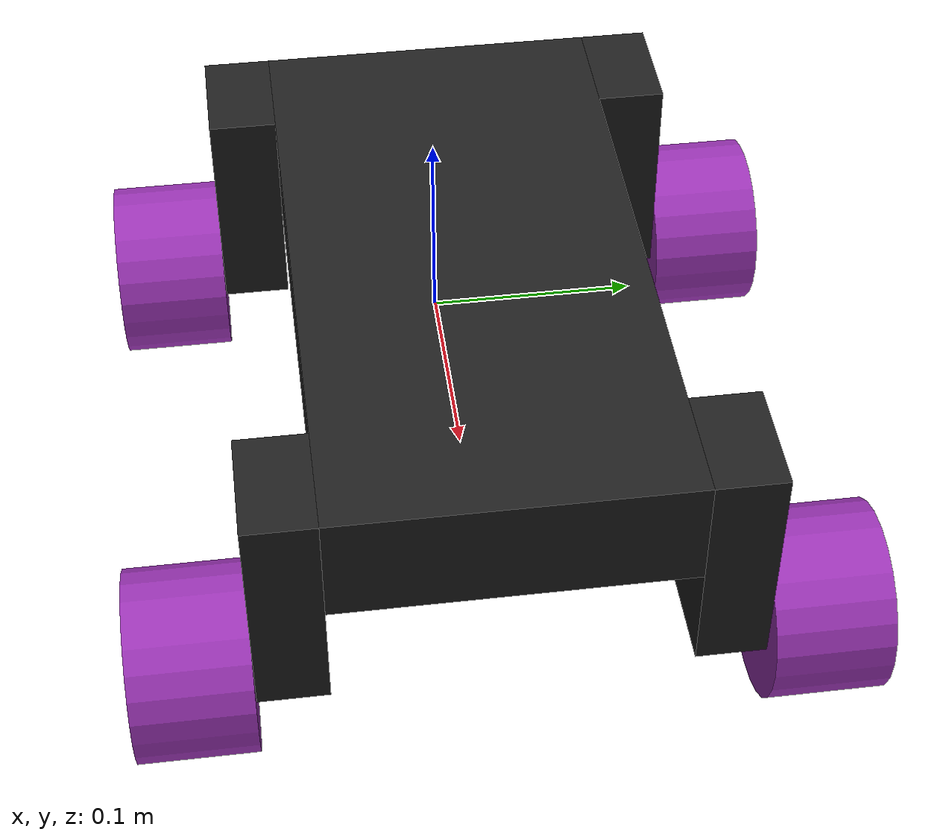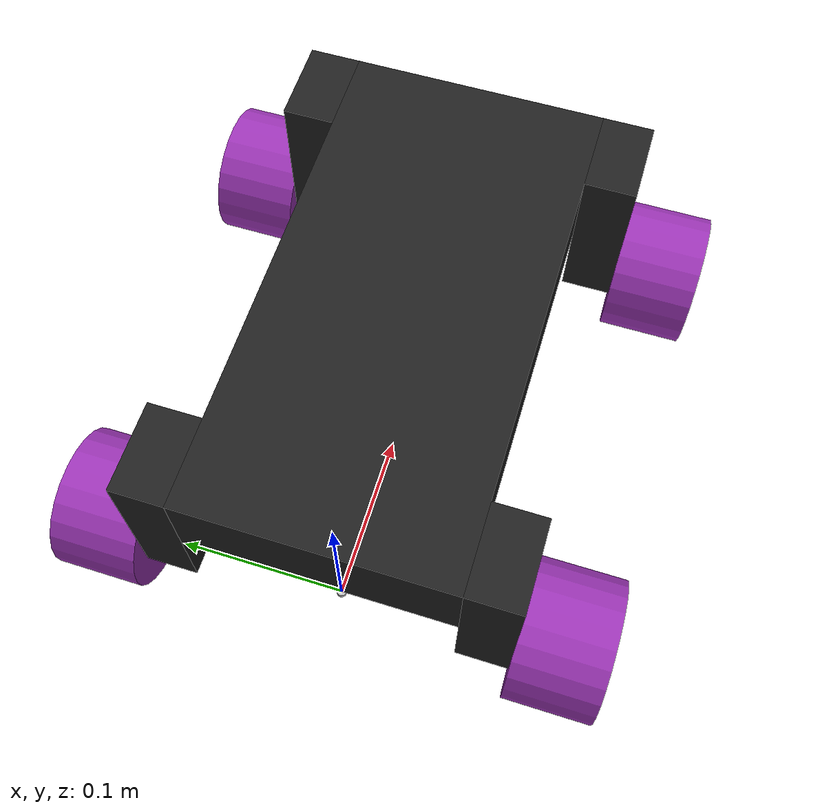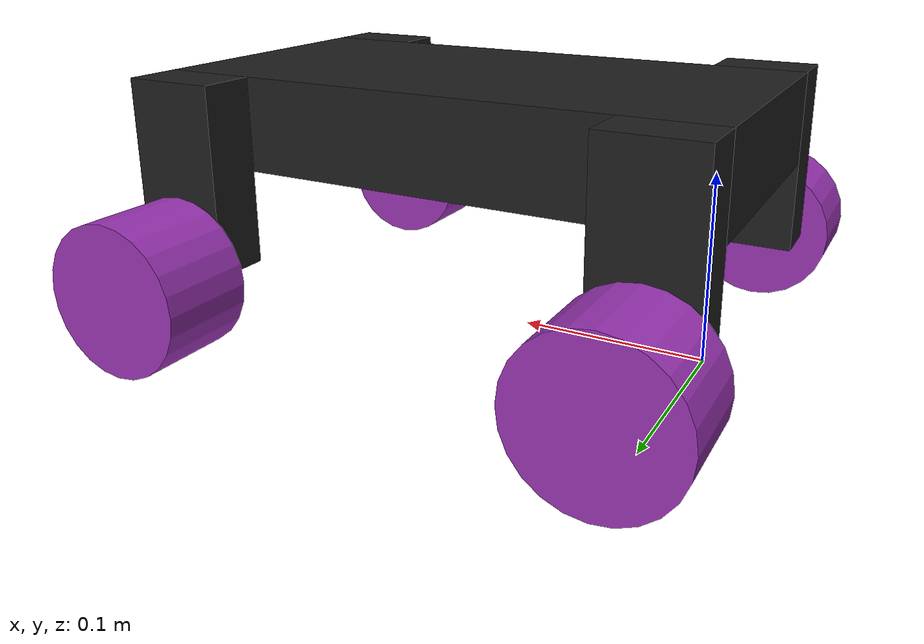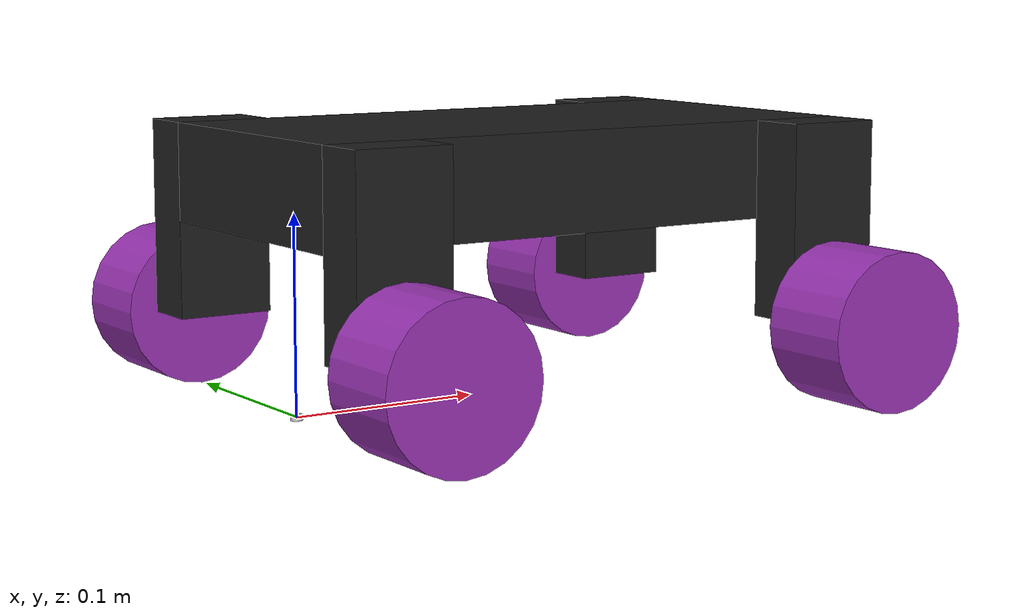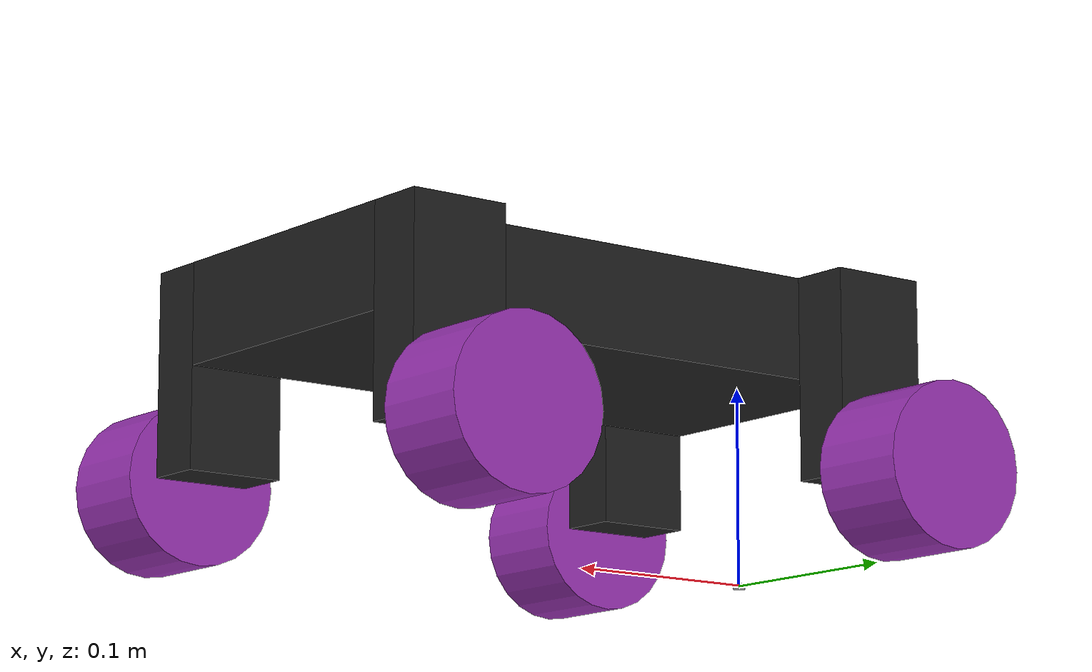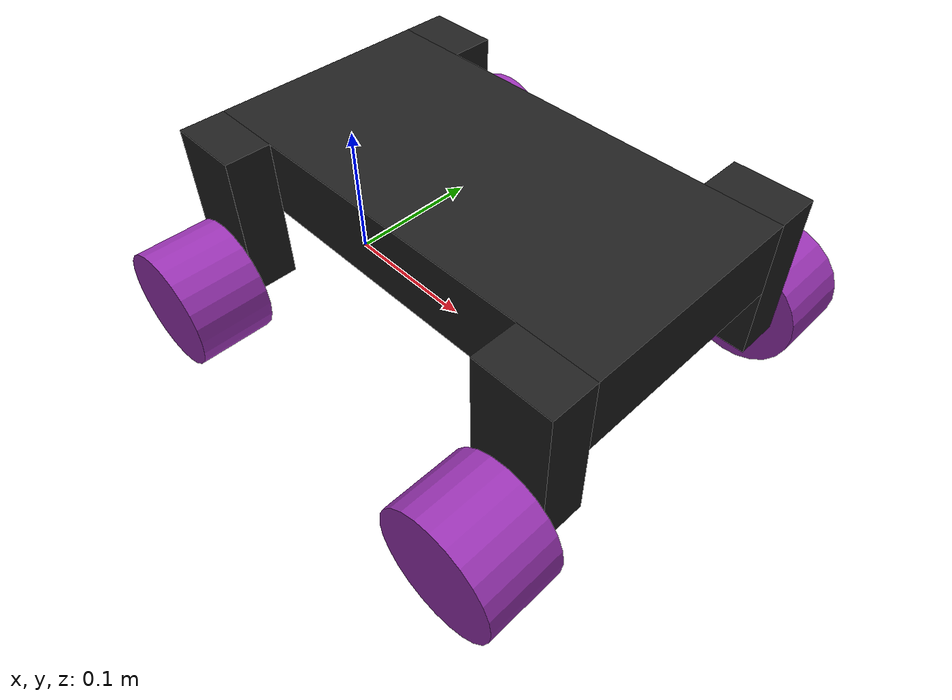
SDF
<sdf version='1.7'>
  <model name='microver'>
    <link name='base_link'>
      <inertial>
        <pose>0.125 0 0.112059 0 -0 0</pose>
        <mass>3.4</mass>
        <inertia>
          <ixx>0.0100739</ixx>
          <ixy>0</ixy>
          <ixz>0</ixz>
          <iyy>0.0300123</iyy>
          <iyz>0</iyz>
          <izz>0.0377283</izz>
        </inertia>
      </inertial>
      <collision name='base_link_fixed_joint_lump__back_left_leg_link_collision'>
        <pose>0 0.09 0.09 0 -0 0</pose>
        <geometry>
          <box>
            <size>0.05 0.03 0.1</size>
          </box>
        </geometry>
        <surface>
          <contact>
            <ode/>
          </contact>
          <friction>
            <ode/>
          </friction>
        </surface>
      </collision>
      <collision name='base_link_fixed_joint_lump__back_right_leg_link_collision_1'>
        <pose>0 -0.09 0.09 0 -0 0</pose>
        <geometry>
          <box>
            <size>0.05 0.03 0.1</size>
          </box>
        </geometry>
        <surface>
          <contact>
            <ode/>
          </contact>
          <friction>
            <ode/>
          </friction>
        </surface>
      </collision>
      <collision name='base_link_fixed_joint_lump__chassis_collision_2'>
        <pose>0.125 0 0.115 0 -0 0</pose>
        <geometry>
          <box>
            <size>0.3 0.15 0.05</size>
          </box>
        </geometry>
        <surface>
          <contact>
            <ode/>
          </contact>
          <friction>
            <ode/>
          </friction>
        </surface>
      </collision>
      <collision name='base_link_fixed_joint_lump__front_left_leg_link_collision_3'>
        <pose>0.25 0.09 0.09 0 -0 0</pose>
        <geometry>
          <box>
            <size>0.05 0.03 0.1</size>
          </box>
        </geometry>
        <surface>
          <contact>
            <ode/>
          </contact>
          <friction>
            <ode/>
          </friction>
        </surface>
      </collision>
      <collision name='base_link_fixed_joint_lump__front_right_leg_link_collision_4'>
        <pose>0.25 -0.09 0.09 0 -0 0</pose>
        <geometry>
          <box>
            <size>0.05 0.03 0.1</size>
          </box>
        </geometry>
        <surface>
          <contact>
            <ode/>
          </contact>
          <friction>
            <ode/>
          </friction>
        </surface>
      </collision>
      <visual name='base_link_visual'>
        <pose>0 0 0 0 -0 0</pose>
        <geometry>
          <cylinder>
            <length>0.003</length>
            <radius>0.003</radius>
          </cylinder>
        </geometry>
      </visual>
      <visual name='base_link_fixed_joint_lump__back_left_leg_link_visual_1'>
        <pose>0 0.09 0.09 0 -0 0</pose>
        <geometry>
          <box>
            <size>0.05 0.03 0.1</size>
          </box>
        </geometry>
        <material>
          <script>
            <name>Gazebo/Black</name>
            <uri>file://media/materials/scripts/gazebo.material</uri>
          </script>
        </material>
      </visual>
      <visual name='base_link_fixed_joint_lump__back_right_leg_link_visual_2'>
        <pose>0 -0.09 0.09 0 -0 0</pose>
        <geometry>
          <box>
            <size>0.05 0.03 0.1</size>
          </box>
        </geometry>
        <material>
          <script>
            <name>Gazebo/Black</name>
            <uri>file://media/materials/scripts/gazebo.material</uri>
          </script>
        </material>
      </visual>
      <visual name='base_link_fixed_joint_lump__chassis_visual_3'>
        <pose>0.125 0 0.115 0 -0 0</pose>
        <geometry>
          <box>
            <size>0.3 0.15 0.05</size>
          </box>
        </geometry>
        <material>
          <script>
            <name>Gazebo/Black</name>
            <uri>file://media/materials/scripts/gazebo.material</uri>
          </script>
        </material>
      </visual>
      <visual name='base_link_fixed_joint_lump__front_left_leg_link_visual_4'>
        <pose>0.25 0.09 0.09 0 -0 0</pose>
        <geometry>
          <box>
            <size>0.05 0.03 0.1</size>
          </box>
        </geometry>
        <material>
          <script>
            <name>Gazebo/Black</name>
            <uri>file://media/materials/scripts/gazebo.material</uri>
          </script>
        </material>
      </visual>
      <visual name='base_link_fixed_joint_lump__front_right_leg_link_visual_5'>
        <pose>0.25 -0.09 0.09 0 -0 0</pose>
        <geometry>
          <box>
            <size>0.05 0.03 0.1</size>
          </box>
        </geometry>
        <material>
          <script>
            <name>Gazebo/Black</name>
            <uri>file://media/materials/scripts/gazebo.material</uri>
          </script>
        </material>
      </visual>
    </link>
    <joint name='back_left_wheel_joint' type='revolute'>
      <pose relative_to='base_link'>0 0.13 0.04 -1.5708 0 0</pose>
      <parent>base_link</parent>
      <child>back_left_wheel_link</child>
      <axis>
        <xyz>0 0 1</xyz>
        <limit>
          <effort>100</effort>
          <velocity>100</velocity>
          <lower>-1e+16</lower>
          <upper>1e+16</upper>
        </limit>
        <dynamics>
          <damping>0.1</damping>
          <friction>0.1</friction>
          <spring_reference>0</spring_reference>
          <spring_stiffness>0</spring_stiffness>
        </dynamics>
      </axis>
    </joint>
    <link name='back_left_wheel_link'>
      <pose relative_to='back_left_wheel_joint'>0 0 0 0 -0 0</pose>
      <inertial>
        <pose>0 0 0 0 -0 0</pose>
        <mass>0.45</mass>
        <inertia>
          <ixx>0.00027375</ixx>
          <ixy>0</ixy>
          <ixz>0</ixz>
          <iyy>0.00027375</iyy>
          <iyz>0</iyz>
          <izz>0.00036</izz>
        </inertia>
      </inertial>
      <collision name='back_left_wheel_link_collision'>
        <pose>0 0 0 0 -0 0</pose>
        <geometry>
          <cylinder>
            <length>0.05</length>
            <radius>0.04</radius>
          </cylinder>
        </geometry>
        <surface>
          <contact>
            <ode/>
          </contact>
          <friction>
            <ode>
              <mu>0.3</mu>
              <mu2>0.3</mu2>
            </ode>
          </friction>
        </surface>
      </collision>
      <visual name='back_left_wheel_link_visual'>
        <pose>0 0 0 0 -0 0</pose>
        <geometry>
          <cylinder>
            <length>0.05</length>
            <radius>0.04</radius>
          </cylinder>
        </geometry>
        <material>
          <script>
            <name>Gazebo/Purple</name>
            <uri>file://media/materials/scripts/gazebo.material</uri>
          </script>
        </material>
      </visual>
    </link>
    <joint name='back_right_wheel_joint' type='revolute'>
      <pose relative_to='base_link'>0 -0.13 0.04 1.5708 -0 0</pose>
      <parent>base_link</parent>
      <child>back_right_wheel_link</child>
      <axis>
        <xyz>0 0 -1</xyz>
        <limit>
          <effort>100</effort>
          <velocity>100</velocity>
          <lower>-1e+16</lower>
          <upper>1e+16</upper>
        </limit>
        <dynamics>
          <damping>0.1</damping>
          <friction>0.1</friction>
          <spring_reference>0</spring_reference>
          <spring_stiffness>0</spring_stiffness>
        </dynamics>
      </axis>
    </joint>
    <link name='back_right_wheel_link'>
      <pose relative_to='back_right_wheel_joint'>0 0 0 0 -0 0</pose>
      <inertial>
        <pose>0 0 0 0 -0 0</pose>
        <mass>0.45</mass>
        <inertia>
          <ixx>0.00027375</ixx>
          <ixy>0</ixy>
          <ixz>0</ixz>
          <iyy>0.00027375</iyy>
          <iyz>0</iyz>
          <izz>0.00036</izz>
        </inertia>
      </inertial>
      <collision name='back_right_wheel_link_collision'>
        <pose>0 0 0 0 -0 0</pose>
        <geometry>
          <cylinder>
            <length>0.05</length>
            <radius>0.04</radius>
          </cylinder>
        </geometry>
        <surface>
          <contact>
            <ode/>
          </contact>
          <friction>
            <ode>
              <mu>0.3</mu>
              <mu2>0.3</mu2>
            </ode>
          </friction>
        </surface>
      </collision>
      <visual name='back_right_wheel_link_visual'>
        <pose>0 0 0 0 -0 0</pose>
        <geometry>
          <cylinder>
            <length>0.05</length>
            <radius>0.04</radius>
          </cylinder>
        </geometry>
        <material>
          <script>
            <name>Gazebo/Purple</name>
            <uri>file://media/materials/scripts/gazebo.material</uri>
          </script>
        </material>
      </visual>
    </link>
    <joint name='front_left_wheel_joint' type='revolute'>
      <pose relative_to='base_link'>0.25 0.13 0.04 -1.5708 0 0</pose>
      <parent>base_link</parent>
      <child>front_left_wheel_link</child>
      <axis>
        <xyz>0 0 1</xyz>
        <limit>
          <effort>100</effort>
          <velocity>100</velocity>
          <lower>-1e+16</lower>
          <upper>1e+16</upper>
        </limit>
        <dynamics>
          <damping>0.1</damping>
          <friction>0.1</friction>
          <spring_reference>0</spring_reference>
          <spring_stiffness>0</spring_stiffness>
        </dynamics>
      </axis>
    </joint>
    <link name='front_left_wheel_link'>
      <pose relative_to='front_left_wheel_joint'>0 0 0 0 -0 0</pose>
      <inertial>
        <pose>0 0 0 0 -0 0</pose>
        <mass>0.45</mass>
        <inertia>
          <ixx>0.00027375</ixx>
          <ixy>0</ixy>
          <ixz>0</ixz>
          <iyy>0.00027375</iyy>
          <iyz>0</iyz>
          <izz>0.00036</izz>
        </inertia>
      </inertial>
      <collision name='front_left_wheel_link_collision'>
        <pose>0 0 0 0 -0 0</pose>
        <geometry>
          <cylinder>
            <length>0.05</length>
            <radius>0.04</radius>
          </cylinder>
        </geometry>
        <surface>
          <contact>
            <ode/>
          </contact>
          <friction>
            <ode>
              <mu>0.3</mu>
              <mu2>0.3</mu2>
            </ode>
          </friction>
        </surface>
      </collision>
      <visual name='front_left_wheel_link_visual'>
        <pose>0 0 0 0 -0 0</pose>
        <geometry>
          <cylinder>
            <length>0.05</length>
            <radius>0.04</radius>
          </cylinder>
        </geometry>
        <material>
          <script>
            <name>Gazebo/Purple</name>
            <uri>file://media/materials/scripts/gazebo.material</uri>
          </script>
        </material>
      </visual>
    </link>
    <joint name='front_right_wheel_joint' type='revolute'>
      <pose relative_to='base_link'>0.25 -0.13 0.04 1.5708 -0 0</pose>
      <parent>base_link</parent>
      <child>front_right_wheel_link</child>
      <axis>
        <xyz>0 0 -1</xyz>
        <limit>
          <effort>100</effort>
          <velocity>100</velocity>
          <lower>-1e+16</lower>
          <upper>1e+16</upper>
        </limit>
        <dynamics>
          <damping>0.1</damping>
          <friction>0.1</friction>
          <spring_reference>0</spring_reference>
          <spring_stiffness>0</spring_stiffness>
        </dynamics>
      </axis>
    </joint>
    <link name='front_right_wheel_link'>
      <pose relative_to='front_right_wheel_joint'>0 0 0 0 -0 0</pose>
      <inertial>
        <pose>0 0 0 0 -0 0</pose>
        <mass>0.45</mass>
        <inertia>
          <ixx>0.00027375</ixx>
          <ixy>0</ixy>
          <ixz>0</ixz>
          <iyy>0.00027375</iyy>
          <iyz>0</iyz>
          <izz>0.00036</izz>
        </inertia>
      </inertial>
      <collision name='front_right_wheel_link_collision'>
        <pose>0 0 0 0 -0 0</pose>
        <geometry>
          <cylinder>
            <length>0.05</length>
            <radius>0.04</radius>
          </cylinder>
        </geometry>
        <surface>
          <contact>
            <ode/>
          </contact>
          <friction>
            <ode>
              <mu>0.3</mu>
              <mu2>0.3</mu2>
            </ode>
          </friction>
        </surface>
      </collision>
      <visual name='front_right_wheel_link_visual'>
        <pose>0 0 0 0 -0 0</pose>
        <geometry>
          <cylinder>
            <length>0.05</length>
            <radius>0.04</radius>
          </cylinder>
        </geometry>
        <material>
          <script>
            <name>Gazebo/Purple</name>
            <uri>file://media/materials/scripts/gazebo.material</uri>
          </script>
        </material>
      </visual>
    </link>
    <static>0</static>
    <plugin name='skid_steer_drive' filename='libgazebo_ros_diff_drive.so'>
      <num_wheel_pairs>2</num_wheel_pairs>
      <left_joint>front_left_wheel_joint</left_joint>
      <right_joint>front_right_wheel_joint</right_joint>
      <left_joint>back_left_wheel_joint</left_joint>
      <right_joint>back_right_wheel_joint</right_joint>
      <wheel_separation>0.26</wheel_separation>
      <wheel_diameter>0.08</wheel_diameter>
      <max_wheel_torque>5</max_wheel_torque>
      <max_wheel_acceleration>5.0</max_wheel_acceleration>
      <publish_odom>1</publish_odom>
      <publish_odom_tf>1</publish_odom_tf>
      <publish_wheel_tf>1</publish_wheel_tf>
      <odometry_frame>odom</odometry_frame>
      <odometry_topic>odom</odometry_topic>
      <robot_base_frame>base_link</robot_base_frame>
      <odometry_source>0</odometry_source>
      <ros>
        <remapping>odom:=wheel/odometry</remapping>
      </ros>
    </plugin>
  </model>
</sdf>
